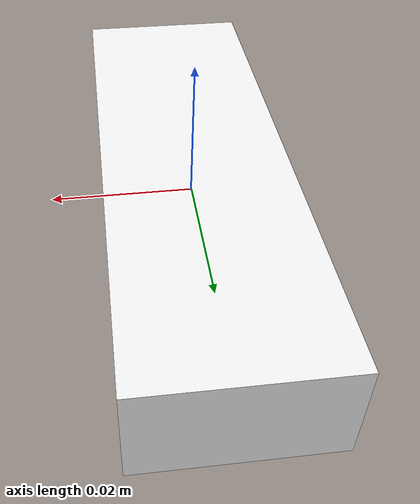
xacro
<?xml version="1.0" encoding="utf-8"?>
<robot
  name="block" xmlns:xacro="http://ros.org/wiki/xacro">
  <xacro:macro name="block">
  <xacro:arg name="color" default="Red" />
  <xacro:property name="scale" value="1"/>
  <xacro:property name="color" value="$(arg color)"/>
  <link
    name="block">
    <inertial>
      <origin
        xyz="0 0 0"
        rpy="0 0 0" />
      <mass
        value="0.01" />
      <inertia
        ixx="0.0005009"
        ixy="0.0"
        ixz="0.0"
        iyy="0.0000708"
        iyz="0.0"
        izz="0.0005376" />
    </inertial>
    <visual>
      <origin
        xyz="0 0 0"
        rpy="0 0 0" />
      <geometry>
        <box size="0.0254 0.0762 0.0142875"/>
      </geometry>
      <material
        name="">
        <color
          rgba="1 1 1 1" />
      </material>
    </visual>
    <collision>
      <origin
        xyz="0 0 0"
        rpy="0 0 0" />
      <geometry>
        <box size="0.0254 0.0762 0.0142875"/>
      </geometry>
      <gazebo>
        <mu>1000.0</mu>        <!-- Lateral friction coefficient -->
        <mu2>1000.0</mu2>      <!-- Second friction coefficient for anisotropic friction -->
        <kp>100000</kp>     <!-- Spring coefficient (stiffness) -->
        <kd>1</kd>          <!-- Damping coefficient -->
      </gazebo>
    </collision>
    <gravity>1</gravity>
  </link>

  <gazebo reference="block">
  <kinematic>0</kinematic>
  <xacro:if value="${color == 'Orange'}">
     <material>Gazebo/Orange</material>
    </xacro:if>
    <xacro:if value="${color == 'Green'}">
     <material>Gazebo/Green</material>
    </xacro:if>
    <xacro:if value="${color == 'Black'}">
     <material>Gazebo/Black</material>
    </xacro:if>
    <xacro:if value="${color == 'Blue'}">
     <material>Gazebo/Blue</material>
     </xacro:if>
     <xacro:if value="${color == 'Yellow'}">
     <material>Gazebo/Yellow</material>
    </xacro:if>
    <xacro:if value="${color == 'Red'}">
     <material>Gazebo/Red</material>
    </xacro:if>
    <xacro:if value="${color == 'White'}">
     <material>Gazebo/White</material>
    </xacro:if>
    <xacro:if value="${color == 'Grey'}">
     <material>Gazebo/Grey</material>
    </xacro:if>
    <visual> <transparency> 0 </transparency> </visual>
  </gazebo>
  </xacro:macro>

  <xacro:block>
  </xacro:block>

</robot>
